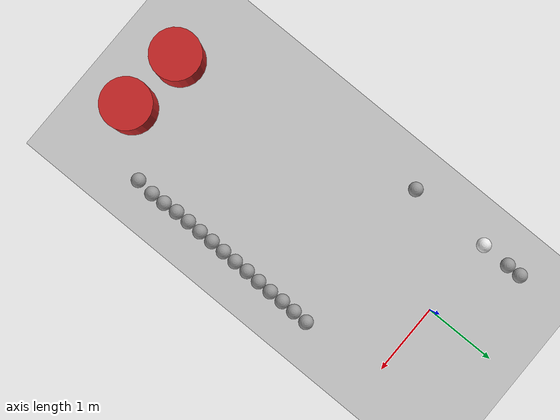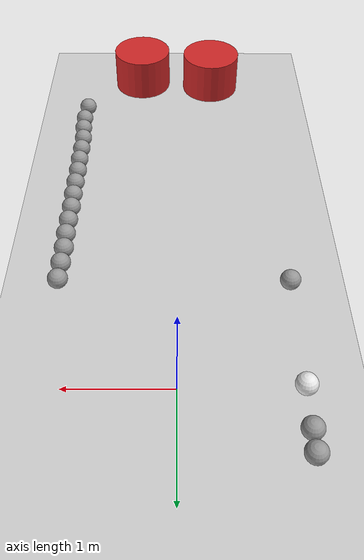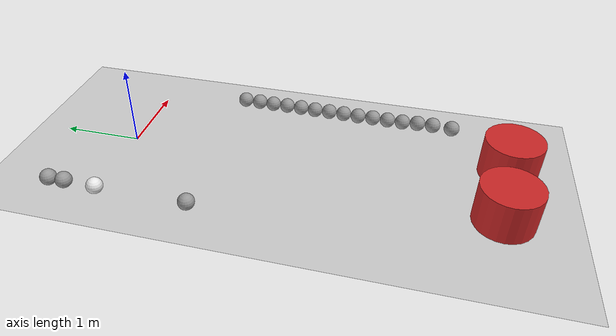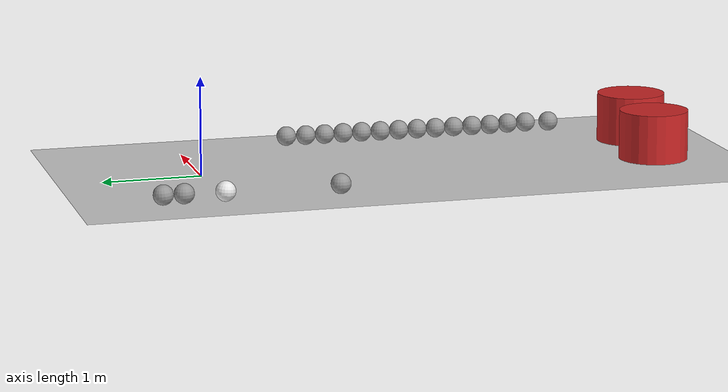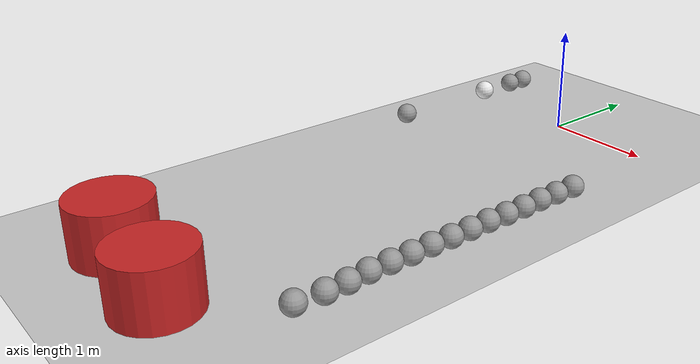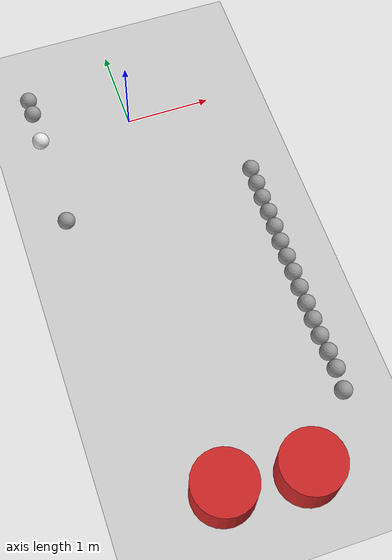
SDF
<sdf version="1.7">
 <world name="default">
  <model name="ground_plane">
   <static>1</static>
   <link name="link">
    <collision name="collision">
     <geometry><plane><normal>0 0 1</normal><size>100 100</size></plane></geometry>
     <surface>
      <contact><collide_bitmask>65535</collide_bitmask></contact>
      <friction><ode><mu>100</mu><mu2>50</mu2></ode></friction>
     </surface>
    </collision>
    <visual name="visual">
     <cast_shadows>0</cast_shadows>
     <geometry><plane><normal>0 0 1</normal><size>100 100</size></plane></geometry>
     <material>
      <script><uri>file://media/materials/scripts/gazebo.material</uri><name>Gazebo/Grey</name></script>
     </material>
    </visual>
   </link>
  </model>
  <model name="sphere">
   <link name="link_0">
    <inertial>
     <mass>1</mass>
     <inertia><ixx>0.1</ixx><ixy>0</ixy><ixz>0</ixz><iyy>0.1</iyy><iyz>0</iyz><izz>0.1</izz></inertia>
    </inertial>
    <visual name="visual">
     <geometry><sphere><radius>0.1</radius></sphere></geometry>
     <material>
      <lighting>1</lighting>
      <script><uri>file://media/materials/scripts/gazebo.material</uri><name>Gazebo/White</name></script>
      <shader type="pixel"><normal_map>__default__</normal_map></shader>
      <ambient>0.3 0.3 0.3 1</ambient>
      <diffuse>0.7 0.7 0.7 1</diffuse>
      <specular>0.01 0.01 0.01 1</specular>
      <emissive>0 0 0 1</emissive>
     </material>
    </visual>
    <collision name="collision">
     <geometry><sphere><radius>0.1</radius></sphere></geometry>
     <surface>
      <friction>
       <ode><mu>1</mu><mu2>1</mu2><fdir1>0 0 0</fdir1><slip1>0</slip1><slip2>0</slip2></ode>
       <torsional>
        <coefficient>1</coefficient>
        <patch_radius>0</patch_radius>
        <surface_radius>0</surface_radius>
        <use_patch_radius>1</use_patch_radius>
        <ode><slip>0</slip></ode>
       </torsional>
      </friction>
      <bounce><restitution_coefficient>0</restitution_coefficient><threshold>1e+06</threshold></bounce>
      <contact>
       <collide_without_contact>0</collide_without_contact>
       <collide_without_contact_bitmask>1</collide_without_contact_bitmask>
       <collide_bitmask>1</collide_bitmask>
       <ode>
        <soft_cfm>0</soft_cfm>
        <soft_erp>0.2</soft_erp>
        <kp>1e+13</kp>
        <kd>1</kd>
        <max_vel>0.01</max_vel>
        <min_depth>0</min_depth>
       </ode>
       <bullet>
        <split_impulse>1</split_impulse>
        <split_impulse_penetration_threshold>-0.01</split_impulse_penetration_threshold>
        <soft_cfm>0</soft_cfm>
        <soft_erp>0.2</soft_erp>
        <kp>1e+13</kp>
        <kd>1</kd>
       </bullet>
      </contact>
     </surface>
    </collision>
   </link>
   <static>0</static>
   <pose>-1.091 0.000207 0.1 0.097317 -0.000948 0.005574</pose>
  </model>
  <model name="sphere_1">
   <link name="link_0">
    <inertial>
     <mass>1</mass>
     <inertia><ixx>0.1</ixx><ixy>0</ixy><ixz>0</ixz><iyy>0.1</iyy><iyz>0</iyz><izz>0.1</izz></inertia>
    </inertial>
    <visual name="visual">
     <geometry><sphere><radius>0.1</radius></sphere></geometry>
     <material>
      <lighting>1</lighting>
      <script><uri>file://media/materials/scripts/gazebo.material</uri><name>Gazebo/Grey</name></script>
      <shader type="pixel"><normal_map>__default__</normal_map></shader>
      <ambient>0.3 0.3 0.3 1</ambient>
      <diffuse>0.7 0.7 0.7 1</diffuse>
      <specular>0.01 0.01 0.01 1</specular>
      <emissive>0 0 0 1</emissive>
     </material>
    </visual>
    <collision name="collision">
     <geometry><sphere><radius>0.1</radius></sphere></geometry>
     <surface>
      <friction>
       <ode><mu>1</mu><mu2>1</mu2><fdir1>0 0 0</fdir1><slip1>0</slip1><slip2>0</slip2></ode>
       <torsional>
        <coefficient>1</coefficient>
        <patch_radius>0</patch_radius>
        <surface_radius>0</surface_radius>
        <use_patch_radius>1</use_patch_radius>
        <ode><slip>0</slip></ode>
       </torsional>
      </friction>
      <bounce><restitution_coefficient>0</restitution_coefficient><threshold>1e+06</threshold></bounce>
      <contact>
       <collide_without_contact>0</collide_without_contact>
       <collide_without_contact_bitmask>1</collide_without_contact_bitmask>
       <collide_bitmask>1</collide_bitmask>
       <ode>
        <soft_cfm>0</soft_cfm>
        <soft_erp>0.2</soft_erp>
        <kp>1e+13</kp>
        <kd>1</kd>
        <max_vel>0.01</max_vel>
        <min_depth>0</min_depth>
       </ode>
       <bullet>
        <split_impulse>1</split_impulse>
        <split_impulse_penetration_threshold>-0.01</split_impulse_penetration_threshold>
        <soft_cfm>0</soft_cfm>
        <soft_erp>0.2</soft_erp>
        <kp>1e+13</kp>
        <kd>1</kd>
       </bullet>
      </contact>
     </surface>
    </collision>
   </link>
   <static>0</static>
   <pose>-1.08492 0.403884 0.1 -0.010826 0.002979 -0.008224</pose>
  </model>
  <model name="sphere_2">
   <link name="link_0">
    <inertial>
     <mass>1</mass>
     <inertia><ixx>0.1</ixx><ixy>0</ixy><ixz>0</ixz><iyy>0.1</iyy><iyz>0</iyz><izz>0.1</izz></inertia>
    </inertial>
    <visual name="visual">
     <geometry><sphere><radius>0.1</radius></sphere></geometry>
     <material>
      <lighting>1</lighting>
      <script><uri>file://media/materials/scripts/gazebo.material</uri><name>Gazebo/Grey</name></script>
      <shader type="pixel"><normal_map>__default__</normal_map></shader>
      <ambient>0.3 0.3 0.3 1</ambient>
      <diffuse>0.7 0.7 0.7 1</diffuse>
      <specular>0.01 0.01 0.01 1</specular>
      <emissive>0 0 0 1</emissive>
     </material>
    </visual>
    <collision name="collision">
     <geometry><sphere><radius>0.1</radius></sphere></geometry>
     <surface>
      <friction>
       <ode><mu>1</mu><mu2>1</mu2><fdir1>0 0 0</fdir1><slip1>0</slip1><slip2>0</slip2></ode>
       <torsional>
        <coefficient>1</coefficient>
        <patch_radius>0</patch_radius>
        <surface_radius>0</surface_radius>
        <use_patch_radius>1</use_patch_radius>
        <ode><slip>0</slip></ode>
       </torsional>
      </friction>
      <bounce><restitution_coefficient>0</restitution_coefficient><threshold>1e+06</threshold></bounce>
      <contact>
       <collide_without_contact>0</collide_without_contact>
       <collide_without_contact_bitmask>1</collide_without_contact_bitmask>
       <collide_bitmask>1</collide_bitmask>
       <ode>
        <soft_cfm>0</soft_cfm>
        <soft_erp>0.2</soft_erp>
        <kp>1e+13</kp>
        <kd>1</kd>
        <max_vel>0.01</max_vel>
        <min_depth>0</min_depth>
       </ode>
       <bullet>
        <split_impulse>1</split_impulse>
        <split_impulse_penetration_threshold>-0.01</split_impulse_penetration_threshold>
        <soft_cfm>0</soft_cfm>
        <soft_erp>0.2</soft_erp>
        <kp>1e+13</kp>
        <kd>1</kd>
       </bullet>
      </contact>
     </surface>
    </collision>
   </link>
   <static>0</static>
   <pose>-1.08295 0.60761 0.1 -0.067159 0.002545 0.001841</pose>
  </model>
  <model name="sphere_12">
   <link name="link_0">
    <inertial>
     <mass>1</mass>
     <inertia><ixx>0.1</ixx><ixy>0</ixy><ixz>0</ixz><iyy>0.1</iyy><iyz>0</iyz><izz>0.1</izz></inertia>
    </inertial>
    <visual name="visual">
     <geometry><sphere><radius>0.1</radius></sphere></geometry>
     <material>
      <lighting>1</lighting>
      <script><uri>file://media/materials/scripts/gazebo.material</uri><name>Gazebo/Grey</name></script>
      <shader type="pixel"><normal_map>__default__</normal_map></shader>
      <ambient>0.3 0.3 0.3 1</ambient>
      <diffuse>0.7 0.7 0.7 1</diffuse>
      <specular>0.01 0.01 0.01 1</specular>
      <emissive>0 0 0 1</emissive>
     </material>
    </visual>
    <collision name="collision">
     <geometry><sphere><radius>0.1</radius></sphere></geometry>
     <surface>
      <friction>
       <ode><mu>1</mu><mu2>1</mu2><fdir1>0 0 0</fdir1><slip1>0</slip1><slip2>0</slip2></ode>
       <torsional>
        <coefficient>1</coefficient>
        <patch_radius>0</patch_radius>
        <surface_radius>0</surface_radius>
        <use_patch_radius>1</use_patch_radius>
        <ode><slip>0</slip></ode>
       </torsional>
      </friction>
      <bounce><restitution_coefficient>0</restitution_coefficient><threshold>1e+06</threshold></bounce>
      <contact>
       <collide_without_contact>0</collide_without_contact>
       <collide_without_contact_bitmask>1</collide_without_contact_bitmask>
       <collide_bitmask>1</collide_bitmask>
       <ode>
        <soft_cfm>0</soft_cfm>
        <soft_erp>0.2</soft_erp>
        <kp>1e+13</kp>
        <kd>1</kd>
        <max_vel>0.01</max_vel>
        <min_depth>0</min_depth>
       </ode>
       <bullet>
        <split_impulse>1</split_impulse>
        <split_impulse_penetration_threshold>-0.01</split_impulse_penetration_threshold>
        <soft_cfm>0</soft_cfm>
        <soft_erp>0.2</soft_erp>
        <kp>1e+13</kp>
        <kd>1</kd>
       </bullet>
      </contact>
     </surface>
    </collision>
   </link>
   <static>0</static>
   <pose>-1.09033 -1.14062 0.1 0 -0 0</pose>
  </model>
  <model name="sphere_38">
   <link name="link_0">
    <inertial>
     <mass>1</mass>
     <inertia><ixx>0.1</ixx><ixy>0</ixy><ixz>0</ixz><iyy>0.1</iyy><iyz>0</iyz><izz>0.1</izz></inertia>
    </inertial>
    <visual name="visual">
     <geometry><sphere><radius>0.1</radius></sphere></geometry>
     <material>
      <lighting>1</lighting>
      <script><uri>file://media/materials/scripts/gazebo.material</uri><name>Gazebo/Grey</name></script>
      <shader type="pixel"><normal_map>__default__</normal_map></shader>
      <ambient>0.3 0.3 0.3 1</ambient>
      <diffuse>0.7 0.7 0.7 1</diffuse>
      <specular>0.01 0.01 0.01 1</specular>
      <emissive>0 0 0 1</emissive>
     </material>
    </visual>
    <collision name="collision">
     <geometry><sphere><radius>0.1</radius></sphere></geometry>
     <surface>
      <friction>
       <ode><mu>1</mu><mu2>1</mu2><fdir1>0 0 0</fdir1><slip1>0</slip1><slip2>0</slip2></ode>
       <torsional>
        <coefficient>1</coefficient>
        <patch_radius>0</patch_radius>
        <surface_radius>0</surface_radius>
        <use_patch_radius>1</use_patch_radius>
        <ode><slip>0</slip></ode>
       </torsional>
      </friction>
      <bounce><restitution_coefficient>0</restitution_coefficient><threshold>1e+06</threshold></bounce>
      <contact>
       <collide_without_contact>0</collide_without_contact>
       <collide_without_contact_bitmask>1</collide_without_contact_bitmask>
       <collide_bitmask>1</collide_bitmask>
       <ode>
        <soft_cfm>0</soft_cfm>
        <soft_erp>0.2</soft_erp>
        <kp>1e+13</kp>
        <kd>1</kd>
        <max_vel>0.01</max_vel>
        <min_depth>0</min_depth>
       </ode>
       <bullet>
        <split_impulse>1</split_impulse>
        <split_impulse_penetration_threshold>-0.01</split_impulse_penetration_threshold>
        <soft_cfm>0</soft_cfm>
        <soft_erp>0.2</soft_erp>
        <kp>1e+13</kp>
        <kd>1</kd>
       </bullet>
      </contact>
     </surface>
    </collision>
   </link>
   <static>0</static>
   <pose>1.1388 -3.75583 0.1 -0.00572 0.049658 -0.007044</pose>
  </model>
  <model name="sphere_39">
   <link name="link_0">
    <inertial>
     <mass>1</mass>
     <inertia><ixx>0.1</ixx><ixy>0</ixy><ixz>0</ixz><iyy>0.1</iyy><iyz>0</iyz><izz>0.1</izz></inertia>
    </inertial>
    <visual name="visual">
     <geometry><sphere><radius>0.1</radius></sphere></geometry>
     <material>
      <lighting>1</lighting>
      <script><uri>file://media/materials/scripts/gazebo.material</uri><name>Gazebo/Grey</name></script>
      <shader type="pixel"><normal_map>__default__</normal_map></shader>
      <ambient>0.3 0.3 0.3 1</ambient>
      <diffuse>0.7 0.7 0.7 1</diffuse>
      <specular>0.01 0.01 0.01 1</specular>
      <emissive>0 0 0 1</emissive>
     </material>
    </visual>
    <collision name="collision">
     <geometry><sphere><radius>0.1</radius></sphere></geometry>
     <surface>
      <friction>
       <ode><mu>1</mu><mu2>1</mu2><fdir1>0 0 0</fdir1><slip1>0</slip1><slip2>0</slip2></ode>
       <torsional>
        <coefficient>1</coefficient>
        <patch_radius>0</patch_radius>
        <surface_radius>0</surface_radius>
        <use_patch_radius>1</use_patch_radius>
        <ode><slip>0</slip></ode>
       </torsional>
      </friction>
      <bounce><restitution_coefficient>0</restitution_coefficient><threshold>1e+06</threshold></bounce>
      <contact>
       <collide_without_contact>0</collide_without_contact>
       <collide_without_contact_bitmask>1</collide_without_contact_bitmask>
       <collide_bitmask>1</collide_bitmask>
       <ode>
        <soft_cfm>0</soft_cfm>
        <soft_erp>0.2</soft_erp>
        <kp>1e+13</kp>
        <kd>1</kd>
        <max_vel>0.01</max_vel>
        <min_depth>0</min_depth>
       </ode>
       <bullet>
        <split_impulse>1</split_impulse>
        <split_impulse_penetration_threshold>-0.01</split_impulse_penetration_threshold>
        <soft_cfm>0</soft_cfm>
        <soft_erp>0.2</soft_erp>
        <kp>1e+13</kp>
        <kd>1</kd>
       </bullet>
      </contact>
     </surface>
    </collision>
   </link>
   <static>0</static>
   <pose>1.13443 -3.55575 0.1 -0.101295 0.023621 0.037882</pose>
  </model>
  <model name="sphere_40">
   <link name="link_0">
    <inertial>
     <mass>1</mass>
     <inertia><ixx>0.1</ixx><ixy>0</ixy><ixz>0</ixz><iyy>0.1</iyy><iyz>0</iyz><izz>0.1</izz></inertia>
    </inertial>
    <visual name="visual">
     <geometry><sphere><radius>0.1</radius></sphere></geometry>
     <material>
      <lighting>1</lighting>
      <script><uri>file://media/materials/scripts/gazebo.material</uri><name>Gazebo/Grey</name></script>
      <shader type="pixel"><normal_map>__default__</normal_map></shader>
      <ambient>0.3 0.3 0.3 1</ambient>
      <diffuse>0.7 0.7 0.7 1</diffuse>
      <specular>0.01 0.01 0.01 1</specular>
      <emissive>0 0 0 1</emissive>
     </material>
    </visual>
    <collision name="collision">
     <geometry><sphere><radius>0.1</radius></sphere></geometry>
     <surface>
      <friction>
       <ode><mu>1</mu><mu2>1</mu2><fdir1>0 0 0</fdir1><slip1>0</slip1><slip2>0</slip2></ode>
       <torsional>
        <coefficient>1</coefficient>
        <patch_radius>0</patch_radius>
        <surface_radius>0</surface_radius>
        <use_patch_radius>1</use_patch_radius>
        <ode><slip>0</slip></ode>
       </torsional>
      </friction>
      <bounce><restitution_coefficient>0</restitution_coefficient><threshold>1e+06</threshold></bounce>
      <contact>
       <collide_without_contact>0</collide_without_contact>
       <collide_without_contact_bitmask>1</collide_without_contact_bitmask>
       <collide_bitmask>1</collide_bitmask>
       <ode>
        <soft_cfm>0</soft_cfm>
        <soft_erp>0.2</soft_erp>
        <kp>1e+13</kp>
        <kd>1</kd>
        <max_vel>0.01</max_vel>
        <min_depth>0</min_depth>
       </ode>
       <bullet>
        <split_impulse>1</split_impulse>
        <split_impulse_penetration_threshold>-0.01</split_impulse_penetration_threshold>
        <soft_cfm>0</soft_cfm>
        <soft_erp>0.2</soft_erp>
        <kp>1e+13</kp>
        <kd>1</kd>
       </bullet>
      </contact>
     </surface>
    </collision>
   </link>
   <static>0</static>
   <pose>1.11807 -3.35616 0.1 0.003481 -0.017971 0.006857</pose>
  </model>
  <model name="sphere_41">
   <link name="link_0">
    <inertial>
     <mass>1</mass>
     <inertia><ixx>0.1</ixx><ixy>0</ixy><ixz>0</ixz><iyy>0.1</iyy><iyz>0</iyz><izz>0.1</izz></inertia>
    </inertial>
    <visual name="visual">
     <geometry><sphere><radius>0.1</radius></sphere></geometry>
     <material>
      <lighting>1</lighting>
      <script><uri>file://media/materials/scripts/gazebo.material</uri><name>Gazebo/Grey</name></script>
      <shader type="pixel"><normal_map>__default__</normal_map></shader>
      <ambient>0.3 0.3 0.3 1</ambient>
      <diffuse>0.7 0.7 0.7 1</diffuse>
      <specular>0.01 0.01 0.01 1</specular>
      <emissive>0 0 0 1</emissive>
     </material>
    </visual>
    <collision name="collision">
     <geometry><sphere><radius>0.1</radius></sphere></geometry>
     <surface>
      <friction>
       <ode><mu>1</mu><mu2>1</mu2><fdir1>0 0 0</fdir1><slip1>0</slip1><slip2>0</slip2></ode>
       <torsional>
        <coefficient>1</coefficient>
        <patch_radius>0</patch_radius>
        <surface_radius>0</surface_radius>
        <use_patch_radius>1</use_patch_radius>
        <ode><slip>0</slip></ode>
       </torsional>
      </friction>
      <bounce><restitution_coefficient>0</restitution_coefficient><threshold>1e+06</threshold></bounce>
      <contact>
       <collide_without_contact>0</collide_without_contact>
       <collide_without_contact_bitmask>1</collide_without_contact_bitmask>
       <collide_bitmask>1</collide_bitmask>
       <ode>
        <soft_cfm>0</soft_cfm>
        <soft_erp>0.2</soft_erp>
        <kp>1e+13</kp>
        <kd>1</kd>
        <max_vel>0.01</max_vel>
        <min_depth>0</min_depth>
       </ode>
       <bullet>
        <split_impulse>1</split_impulse>
        <split_impulse_penetration_threshold>-0.01</split_impulse_penetration_threshold>
        <soft_cfm>0</soft_cfm>
        <soft_erp>0.2</soft_erp>
        <kp>1e+13</kp>
        <kd>1</kd>
       </bullet>
      </contact>
     </surface>
    </collision>
   </link>
   <static>0</static>
   <pose>1.11838 -3.15616 0.1 0.030994 -0.008865 -0.015568</pose>
  </model>
  <model name="sphere_42">
   <link name="link_0">
    <inertial>
     <mass>1</mass>
     <inertia><ixx>0.1</ixx><ixy>0</ixy><ixz>0</ixz><iyy>0.1</iyy><iyz>0</iyz><izz>0.1</izz></inertia>
    </inertial>
    <visual name="visual">
     <geometry><sphere><radius>0.1</radius></sphere></geometry>
     <material>
      <lighting>1</lighting>
      <script><uri>file://media/materials/scripts/gazebo.material</uri><name>Gazebo/Grey</name></script>
      <shader type="pixel"><normal_map>__default__</normal_map></shader>
      <ambient>0.3 0.3 0.3 1</ambient>
      <diffuse>0.7 0.7 0.7 1</diffuse>
      <specular>0.01 0.01 0.01 1</specular>
      <emissive>0 0 0 1</emissive>
     </material>
    </visual>
    <collision name="collision">
     <geometry><sphere><radius>0.1</radius></sphere></geometry>
     <surface>
      <friction>
       <ode><mu>1</mu><mu2>1</mu2><fdir1>0 0 0</fdir1><slip1>0</slip1><slip2>0</slip2></ode>
       <torsional>
        <coefficient>1</coefficient>
        <patch_radius>0</patch_radius>
        <surface_radius>0</surface_radius>
        <use_patch_radius>1</use_patch_radius>
        <ode><slip>0</slip></ode>
       </torsional>
      </friction>
      <bounce><restitution_coefficient>0</restitution_coefficient><threshold>1e+06</threshold></bounce>
      <contact>
       <collide_without_contact>0</collide_without_contact>
       <collide_without_contact_bitmask>1</collide_without_contact_bitmask>
       <collide_bitmask>1</collide_bitmask>
       <ode>
        <soft_cfm>0</soft_cfm>
        <soft_erp>0.2</soft_erp>
        <kp>1e+13</kp>
        <kd>1</kd>
        <max_vel>0.01</max_vel>
        <min_depth>0</min_depth>
       </ode>
       <bullet>
        <split_impulse>1</split_impulse>
        <split_impulse_penetration_threshold>-0.01</split_impulse_penetration_threshold>
        <soft_cfm>0</soft_cfm>
        <soft_erp>0.2</soft_erp>
        <kp>1e+13</kp>
        <kd>1</kd>
       </bullet>
      </contact>
     </surface>
    </collision>
   </link>
   <static>0</static>
   <pose>1.12229 -2.95617 0.1 0.014626 0.007557 0.001917</pose>
  </model>
  <model name="sphere_43">
   <link name="link_0">
    <inertial>
     <mass>1</mass>
     <inertia><ixx>0.1</ixx><ixy>0</ixy><ixz>0</ixz><iyy>0.1</iyy><iyz>0</iyz><izz>0.1</izz></inertia>
    </inertial>
    <visual name="visual">
     <geometry><sphere><radius>0.1</radius></sphere></geometry>
     <material>
      <lighting>1</lighting>
      <script><uri>file://media/materials/scripts/gazebo.material</uri><name>Gazebo/Grey</name></script>
      <shader type="pixel"><normal_map>__default__</normal_map></shader>
      <ambient>0.3 0.3 0.3 1</ambient>
      <diffuse>0.7 0.7 0.7 1</diffuse>
      <specular>0.01 0.01 0.01 1</specular>
      <emissive>0 0 0 1</emissive>
     </material>
    </visual>
    <collision name="collision">
     <geometry><sphere><radius>0.1</radius></sphere></geometry>
     <surface>
      <friction>
       <ode><mu>1</mu><mu2>1</mu2><fdir1>0 0 0</fdir1><slip1>0</slip1><slip2>0</slip2></ode>
       <torsional>
        <coefficient>1</coefficient>
        <patch_radius>0</patch_radius>
        <surface_radius>0</surface_radius>
        <use_patch_radius>1</use_patch_radius>
        <ode><slip>0</slip></ode>
       </torsional>
      </friction>
      <bounce><restitution_coefficient>0</restitution_coefficient><threshold>1e+06</threshold></bounce>
      <contact>
       <collide_without_contact>0</collide_without_contact>
       <collide_without_contact_bitmask>1</collide_without_contact_bitmask>
       <collide_bitmask>1</collide_bitmask>
       <ode>
        <soft_cfm>0</soft_cfm>
        <soft_erp>0.2</soft_erp>
        <kp>1e+13</kp>
        <kd>1</kd>
        <max_vel>0.01</max_vel>
        <min_depth>0</min_depth>
       </ode>
       <bullet>
        <split_impulse>1</split_impulse>
        <split_impulse_penetration_threshold>-0.01</split_impulse_penetration_threshold>
        <soft_cfm>0</soft_cfm>
        <soft_erp>0.2</soft_erp>
        <kp>1e+13</kp>
        <kd>1</kd>
       </bullet>
      </contact>
     </surface>
    </collision>
   </link>
   <static>0</static>
   <pose>1.12068 -2.75547 0.1 -0.046632 -0.00133 0.003104</pose>
  </model>
  <model name="sphere_44">
   <link name="link_0">
    <inertial>
     <mass>1</mass>
     <inertia><ixx>0.1</ixx><ixy>0</ixy><ixz>0</ixz><iyy>0.1</iyy><iyz>0</iyz><izz>0.1</izz></inertia>
    </inertial>
    <visual name="visual">
     <geometry><sphere><radius>0.1</radius></sphere></geometry>
     <material>
      <lighting>1</lighting>
      <script><uri>file://media/materials/scripts/gazebo.material</uri><name>Gazebo/Grey</name></script>
      <shader type="pixel"><normal_map>__default__</normal_map></shader>
      <ambient>0.3 0.3 0.3 1</ambient>
      <diffuse>0.7 0.7 0.7 1</diffuse>
      <specular>0.01 0.01 0.01 1</specular>
      <emissive>0 0 0 1</emissive>
     </material>
    </visual>
    <collision name="collision">
     <geometry><sphere><radius>0.1</radius></sphere></geometry>
     <surface>
      <friction>
       <ode><mu>1</mu><mu2>1</mu2><fdir1>0 0 0</fdir1><slip1>0</slip1><slip2>0</slip2></ode>
       <torsional>
        <coefficient>1</coefficient>
        <patch_radius>0</patch_radius>
        <surface_radius>0</surface_radius>
        <use_patch_radius>1</use_patch_radius>
        <ode><slip>0</slip></ode>
       </torsional>
      </friction>
      <bounce><restitution_coefficient>0</restitution_coefficient><threshold>1e+06</threshold></bounce>
      <contact>
       <collide_without_contact>0</collide_without_contact>
       <collide_without_contact_bitmask>1</collide_without_contact_bitmask>
       <collide_bitmask>1</collide_bitmask>
       <ode>
        <soft_cfm>0</soft_cfm>
        <soft_erp>0.2</soft_erp>
        <kp>1e+13</kp>
        <kd>1</kd>
        <max_vel>0.01</max_vel>
        <min_depth>0</min_depth>
       </ode>
       <bullet>
        <split_impulse>1</split_impulse>
        <split_impulse_penetration_threshold>-0.01</split_impulse_penetration_threshold>
        <soft_cfm>0</soft_cfm>
        <soft_erp>0.2</soft_erp>
        <kp>1e+13</kp>
        <kd>1</kd>
       </bullet>
      </contact>
     </surface>
    </collision>
   </link>
   <static>0</static>
   <pose>1.12622 -2.55555 0.1 0.054553 0.000909 -0.006408</pose>
  </model>
  <model name="sphere_45">
   <link name="link_0">
    <inertial>
     <mass>1</mass>
     <inertia><ixx>0.1</ixx><ixy>0</ixy><ixz>0</ixz><iyy>0.1</iyy><iyz>0</iyz><izz>0.1</izz></inertia>
    </inertial>
    <visual name="visual">
     <geometry><sphere><radius>0.1</radius></sphere></geometry>
     <material>
      <lighting>1</lighting>
      <script><uri>file://media/materials/scripts/gazebo.material</uri><name>Gazebo/Grey</name></script>
      <shader type="pixel"><normal_map>__default__</normal_map></shader>
      <ambient>0.3 0.3 0.3 1</ambient>
      <diffuse>0.7 0.7 0.7 1</diffuse>
      <specular>0.01 0.01 0.01 1</specular>
      <emissive>0 0 0 1</emissive>
     </material>
    </visual>
    <collision name="collision">
     <geometry><sphere><radius>0.1</radius></sphere></geometry>
     <surface>
      <friction>
       <ode><mu>1</mu><mu2>1</mu2><fdir1>0 0 0</fdir1><slip1>0</slip1><slip2>0</slip2></ode>
       <torsional>
        <coefficient>1</coefficient>
        <patch_radius>0</patch_radius>
        <surface_radius>0</surface_radius>
        <use_patch_radius>1</use_patch_radius>
        <ode><slip>0</slip></ode>
       </torsional>
      </friction>
      <bounce><restitution_coefficient>0</restitution_coefficient><threshold>1e+06</threshold></bounce>
      <contact>
       <collide_without_contact>0</collide_without_contact>
       <collide_without_contact_bitmask>1</collide_without_contact_bitmask>
       <collide_bitmask>1</collide_bitmask>
       <ode>
        <soft_cfm>0</soft_cfm>
        <soft_erp>0.2</soft_erp>
        <kp>1e+13</kp>
        <kd>1</kd>
        <max_vel>0.01</max_vel>
        <min_depth>0</min_depth>
       </ode>
       <bullet>
        <split_impulse>1</split_impulse>
        <split_impulse_penetration_threshold>-0.01</split_impulse_penetration_threshold>
        <soft_cfm>0</soft_cfm>
        <soft_erp>0.2</soft_erp>
        <kp>1e+13</kp>
        <kd>1</kd>
       </bullet>
      </contact>
     </surface>
    </collision>
   </link>
   <static>0</static>
   <pose>1.12867 -2.35556 0.1 -0.057829 0.002622 0.006321</pose>
  </model>
  <model name="sphere_46">
   <link name="link_0">
    <inertial>
     <mass>1</mass>
     <inertia><ixx>0.1</ixx><ixy>0</ixy><ixz>0</ixz><iyy>0.1</iyy><iyz>0</iyz><izz>0.1</izz></inertia>
    </inertial>
    <visual name="visual">
     <geometry><sphere><radius>0.1</radius></sphere></geometry>
     <material>
      <lighting>1</lighting>
      <script><uri>file://media/materials/scripts/gazebo.material</uri><name>Gazebo/Grey</name></script>
      <shader type="pixel"><normal_map>__default__</normal_map></shader>
      <ambient>0.3 0.3 0.3 1</ambient>
      <diffuse>0.7 0.7 0.7 1</diffuse>
      <specular>0.01 0.01 0.01 1</specular>
      <emissive>0 0 0 1</emissive>
     </material>
    </visual>
    <collision name="collision">
     <geometry><sphere><radius>0.1</radius></sphere></geometry>
     <surface>
      <friction>
       <ode><mu>1</mu><mu2>1</mu2><fdir1>0 0 0</fdir1><slip1>0</slip1><slip2>0</slip2></ode>
       <torsional>
        <coefficient>1</coefficient>
        <patch_radius>0</patch_radius>
        <surface_radius>0</surface_radius>
        <use_patch_radius>1</use_patch_radius>
        <ode><slip>0</slip></ode>
       </torsional>
      </friction>
      <bounce><restitution_coefficient>0</restitution_coefficient><threshold>1e+06</threshold></bounce>
      <contact>
       <collide_without_contact>0</collide_without_contact>
       <collide_without_contact_bitmask>1</collide_without_contact_bitmask>
       <collide_bitmask>1</collide_bitmask>
       <ode>
        <soft_cfm>0</soft_cfm>
        <soft_erp>0.2</soft_erp>
        <kp>1e+13</kp>
        <kd>1</kd>
        <max_vel>0.01</max_vel>
        <min_depth>0</min_depth>
       </ode>
       <bullet>
        <split_impulse>1</split_impulse>
        <split_impulse_penetration_threshold>-0.01</split_impulse_penetration_threshold>
        <soft_cfm>0</soft_cfm>
        <soft_erp>0.2</soft_erp>
        <kp>1e+13</kp>
        <kd>1</kd>
       </bullet>
      </contact>
     </surface>
    </collision>
   </link>
   <static>0</static>
   <pose>1.12737 -2.15557 0.1 -0.000369 -0.002959 -0.000921</pose>
  </model>
  <model name="sphere_47">
   <link name="link_0">
    <inertial>
     <mass>1</mass>
     <inertia><ixx>0.1</ixx><ixy>0</ixy><ixz>0</ixz><iyy>0.1</iyy><iyz>0</iyz><izz>0.1</izz></inertia>
    </inertial>
    <visual name="visual">
     <geometry><sphere><radius>0.1</radius></sphere></geometry>
     <material>
      <lighting>1</lighting>
      <script><uri>file://media/materials/scripts/gazebo.material</uri><name>Gazebo/Grey</name></script>
      <shader type="pixel"><normal_map>__default__</normal_map></shader>
      <ambient>0.3 0.3 0.3 1</ambient>
      <diffuse>0.7 0.7 0.7 1</diffuse>
      <specular>0.01 0.01 0.01 1</specular>
      <emissive>0 0 0 1</emissive>
     </material>
    </visual>
    <collision name="collision">
     <geometry><sphere><radius>0.1</radius></sphere></geometry>
     <surface>
      <friction>
       <ode><mu>1</mu><mu2>1</mu2><fdir1>0 0 0</fdir1><slip1>0</slip1><slip2>0</slip2></ode>
       <torsional>
        <coefficient>1</coefficient>
        <patch_radius>0</patch_radius>
        <surface_radius>0</surface_radius>
        <use_patch_radius>1</use_patch_radius>
        <ode><slip>0</slip></ode>
       </torsional>
      </friction>
      <bounce><restitution_coefficient>0</restitution_coefficient><threshold>1e+06</threshold></bounce>
      <contact>
       <collide_without_contact>0</collide_without_contact>
       <collide_without_contact_bitmask>1</collide_without_contact_bitmask>
       <collide_bitmask>1</collide_bitmask>
       <ode>
        <soft_cfm>0</soft_cfm>
        <soft_erp>0.2</soft_erp>
        <kp>1e+13</kp>
        <kd>1</kd>
        <max_vel>0.01</max_vel>
        <min_depth>0</min_depth>
       </ode>
       <bullet>
        <split_impulse>1</split_impulse>
        <split_impulse_penetration_threshold>-0.01</split_impulse_penetration_threshold>
        <soft_cfm>0</soft_cfm>
        <soft_erp>0.2</soft_erp>
        <kp>1e+13</kp>
        <kd>1</kd>
       </bullet>
      </contact>
     </surface>
    </collision>
   </link>
   <static>0</static>
   <pose>1.13583 -1.95571 0.1 0.043697 0.005322 -0.00818</pose>
  </model>
  <model name="sphere_48">
   <link name="link_0">
    <inertial>
     <mass>1</mass>
     <inertia><ixx>0.1</ixx><ixy>0</ixy><ixz>0</ixz><iyy>0.1</iyy><iyz>0</iyz><izz>0.1</izz></inertia>
    </inertial>
    <visual name="visual">
     <geometry><sphere><radius>0.1</radius></sphere></geometry>
     <material>
      <lighting>1</lighting>
      <script><uri>file://media/materials/scripts/gazebo.material</uri><name>Gazebo/Grey</name></script>
      <shader type="pixel"><normal_map>__default__</normal_map></shader>
      <ambient>0.3 0.3 0.3 1</ambient>
      <diffuse>0.7 0.7 0.7 1</diffuse>
      <specular>0.01 0.01 0.01 1</specular>
      <emissive>0 0 0 1</emissive>
     </material>
    </visual>
    <collision name="collision">
     <geometry><sphere><radius>0.1</radius></sphere></geometry>
     <surface>
      <friction>
       <ode><mu>1</mu><mu2>1</mu2><fdir1>0 0 0</fdir1><slip1>0</slip1><slip2>0</slip2></ode>
       <torsional>
        <coefficient>1</coefficient>
        <patch_radius>0</patch_radius>
        <surface_radius>0</surface_radius>
        <use_patch_radius>1</use_patch_radius>
        <ode><slip>0</slip></ode>
       </torsional>
      </friction>
      <bounce><restitution_coefficient>0</restitution_coefficient><threshold>1e+06</threshold></bounce>
      <contact>
       <collide_without_contact>0</collide_without_contact>
       <collide_without_contact_bitmask>1</collide_without_contact_bitmask>
       <collide_bitmask>1</collide_bitmask>
       <ode>
        <soft_cfm>0</soft_cfm>
        <soft_erp>0.2</soft_erp>
        <kp>1e+13</kp>
        <kd>1</kd>
        <max_vel>0.01</max_vel>
        <min_depth>0</min_depth>
       </ode>
       <bullet>
        <split_impulse>1</split_impulse>
        <split_impulse_penetration_threshold>-0.01</split_impulse_penetration_threshold>
        <soft_cfm>0</soft_cfm>
        <soft_erp>0.2</soft_erp>
        <kp>1e+13</kp>
        <kd>1</kd>
       </bullet>
      </contact>
     </surface>
    </collision>
   </link>
   <static>0</static>
   <pose>1.13834 -1.75572 0.1 -0.038988 0.007323 0.007662</pose>
  </model>
  <model name="sphere_49">
   <link name="link_0">
    <inertial>
     <mass>1</mass>
     <inertia><ixx>0.1</ixx><ixy>0</ixy><ixz>0</ixz><iyy>0.1</iyy><iyz>0</iyz><izz>0.1</izz></inertia>
    </inertial>
    <visual name="visual">
     <geometry><sphere><radius>0.1</radius></sphere></geometry>
     <material>
      <lighting>1</lighting>
      <script><uri>file://media/materials/scripts/gazebo.material</uri><name>Gazebo/Grey</name></script>
      <shader type="pixel"><normal_map>__default__</normal_map></shader>
      <ambient>0.3 0.3 0.3 1</ambient>
      <diffuse>0.7 0.7 0.7 1</diffuse>
      <specular>0.01 0.01 0.01 1</specular>
      <emissive>0 0 0 1</emissive>
     </material>
    </visual>
    <collision name="collision">
     <geometry><sphere><radius>0.1</radius></sphere></geometry>
     <surface>
      <friction>
       <ode><mu>1</mu><mu2>1</mu2><fdir1>0 0 0</fdir1><slip1>0</slip1><slip2>0</slip2></ode>
       <torsional>
        <coefficient>1</coefficient>
        <patch_radius>0</patch_radius>
        <surface_radius>0</surface_radius>
        <use_patch_radius>1</use_patch_radius>
        <ode><slip>0</slip></ode>
       </torsional>
      </friction>
      <bounce><restitution_coefficient>0</restitution_coefficient><threshold>1e+06</threshold></bounce>
      <contact>
       <collide_without_contact>0</collide_without_contact>
       <collide_without_contact_bitmask>1</collide_without_contact_bitmask>
       <collide_bitmask>1</collide_bitmask>
       <ode>
        <soft_cfm>0</soft_cfm>
        <soft_erp>0.2</soft_erp>
        <kp>1e+13</kp>
        <kd>1</kd>
        <max_vel>0.01</max_vel>
        <min_depth>0</min_depth>
       </ode>
       <bullet>
        <split_impulse>1</split_impulse>
        <split_impulse_penetration_threshold>-0.01</split_impulse_penetration_threshold>
        <soft_cfm>0</soft_cfm>
        <soft_erp>0.2</soft_erp>
        <kp>1e+13</kp>
        <kd>1</kd>
       </bullet>
      </contact>
     </surface>
    </collision>
   </link>
   <static>0</static>
   <pose>1.13568 -1.55573 0.1 0.012948 -0.004401 0.004765</pose>
  </model>
  <model name="sphere_50">
   <link name="link_0">
    <inertial>
     <mass>1</mass>
     <inertia><ixx>0.1</ixx><ixy>0</ixy><ixz>0</ixz><iyy>0.1</iyy><iyz>0</iyz><izz>0.1</izz></inertia>
    </inertial>
    <visual name="visual">
     <geometry><sphere><radius>0.1</radius></sphere></geometry>
     <material>
      <lighting>1</lighting>
      <script><uri>file://media/materials/scripts/gazebo.material</uri><name>Gazebo/Grey</name></script>
      <shader type="pixel"><normal_map>__default__</normal_map></shader>
      <ambient>0.3 0.3 0.3 1</ambient>
      <diffuse>0.7 0.7 0.7 1</diffuse>
      <specular>0.01 0.01 0.01 1</specular>
      <emissive>0 0 0 1</emissive>
     </material>
    </visual>
    <collision name="collision">
     <geometry><sphere><radius>0.1</radius></sphere></geometry>
     <surface>
      <friction>
       <ode><mu>1</mu><mu2>1</mu2><fdir1>0 0 0</fdir1><slip1>0</slip1><slip2>0</slip2></ode>
       <torsional>
        <coefficient>1</coefficient>
        <patch_radius>0</patch_radius>
        <surface_radius>0</surface_radius>
        <use_patch_radius>1</use_patch_radius>
        <ode><slip>0</slip></ode>
       </torsional>
      </friction>
      <bounce><restitution_coefficient>0</restitution_coefficient><threshold>1e+06</threshold></bounce>
      <contact>
       <collide_without_contact>0</collide_without_contact>
       <collide_without_contact_bitmask>1</collide_without_contact_bitmask>
       <collide_bitmask>1</collide_bitmask>
       <ode>
        <soft_cfm>0</soft_cfm>
        <soft_erp>0.2</soft_erp>
        <kp>1e+13</kp>
        <kd>1</kd>
        <max_vel>0.01</max_vel>
        <min_depth>0</min_depth>
       </ode>
       <bullet>
        <split_impulse>1</split_impulse>
        <split_impulse_penetration_threshold>-0.01</split_impulse_penetration_threshold>
        <soft_cfm>0</soft_cfm>
        <soft_erp>0.2</soft_erp>
        <kp>1e+13</kp>
        <kd>1</kd>
       </bullet>
      </contact>
     </surface>
    </collision>
   </link>
   <static>0</static>
   <pose>1.14221 -1.3558 0.1 0.010688 -0.014723 0.009749</pose>
  </model>
  <model name="sphere_51">
   <link name="link_0">
    <inertial>
     <mass>1</mass>
     <inertia><ixx>0.1</ixx><ixy>0</ixy><ixz>0</ixz><iyy>0.1</iyy><iyz>0</iyz><izz>0.1</izz></inertia>
    </inertial>
    <visual name="visual">
     <geometry><sphere><radius>0.1</radius></sphere></geometry>
     <material>
      <lighting>1</lighting>
      <script><uri>file://media/materials/scripts/gazebo.material</uri><name>Gazebo/Grey</name></script>
      <shader type="pixel"><normal_map>__default__</normal_map></shader>
      <ambient>0.3 0.3 0.3 1</ambient>
      <diffuse>0.7 0.7 0.7 1</diffuse>
      <specular>0.01 0.01 0.01 1</specular>
      <emissive>0 0 0 1</emissive>
     </material>
    </visual>
    <collision name="collision">
     <geometry><sphere><radius>0.1</radius></sphere></geometry>
     <surface>
      <friction>
       <ode><mu>1</mu><mu2>1</mu2><fdir1>0 0 0</fdir1><slip1>0</slip1><slip2>0</slip2></ode>
       <torsional>
        <coefficient>1</coefficient>
        <patch_radius>0</patch_radius>
        <surface_radius>0</surface_radius>
        <use_patch_radius>1</use_patch_radius>
        <ode><slip>0</slip></ode>
       </torsional>
      </friction>
      <bounce><restitution_coefficient>0</restitution_coefficient><threshold>1e+06</threshold></bounce>
      <contact>
       <collide_without_contact>0</collide_without_contact>
       <collide_without_contact_bitmask>1</collide_without_contact_bitmask>
       <collide_bitmask>1</collide_bitmask>
       <ode>
        <soft_cfm>0</soft_cfm>
        <soft_erp>0.2</soft_erp>
        <kp>1e+13</kp>
        <kd>1</kd>
        <max_vel>0.01</max_vel>
        <min_depth>0</min_depth>
       </ode>
       <bullet>
        <split_impulse>1</split_impulse>
        <split_impulse_penetration_threshold>-0.01</split_impulse_penetration_threshold>
        <soft_cfm>0</soft_cfm>
        <soft_erp>0.2</soft_erp>
        <kp>1e+13</kp>
        <kd>1</kd>
       </bullet>
      </contact>
     </surface>
    </collision>
   </link>
   <static>0</static>
   <pose>1.14735 -1.14886 0.1 -0.107007 -0.043415 -0.015377</pose>
  </model>
  <model name="sphere_37">
   <link name="link_0">
    <inertial>
     <mass>1</mass>
     <inertia><ixx>0.1</ixx><ixy>0</ixy><ixz>0</ixz><iyy>0.1</iyy><iyz>0</iyz><izz>0.1</izz></inertia>
    </inertial>
    <visual name="visual">
     <geometry><sphere><radius>0.1</radius></sphere></geometry>
     <material>
      <lighting>1</lighting>
      <script><uri>file://media/materials/scripts/gazebo.material</uri><name>Gazebo/Grey</name></script>
      <shader type="pixel"><normal_map>__default__</normal_map></shader>
      <ambient>0.3 0.3 0.3 1</ambient>
      <diffuse>0.7 0.7 0.7 1</diffuse>
      <specular>0.01 0.01 0.01 1</specular>
      <emissive>0 0 0 1</emissive>
     </material>
    </visual>
    <collision name="collision">
     <geometry><sphere><radius>0.1</radius></sphere></geometry>
     <surface>
      <friction>
       <ode><mu>1</mu><mu2>1</mu2><fdir1>0 0 0</fdir1><slip1>0</slip1><slip2>0</slip2></ode>
       <torsional>
        <coefficient>1</coefficient>
        <patch_radius>0</patch_radius>
        <surface_radius>0</surface_radius>
        <use_patch_radius>1</use_patch_radius>
        <ode><slip>0</slip></ode>
       </torsional>
      </friction>
      <bounce><restitution_coefficient>0</restitution_coefficient><threshold>1e+06</threshold></bounce>
      <contact>
       <collide_without_contact>0</collide_without_contact>
       <collide_without_contact_bitmask>1</collide_without_contact_bitmask>
       <collide_bitmask>1</collide_bitmask>
       <ode>
        <soft_cfm>0</soft_cfm>
        <soft_erp>0.2</soft_erp>
        <kp>1e+13</kp>
        <kd>1</kd>
        <max_vel>0.01</max_vel>
        <min_depth>0</min_depth>
       </ode>
       <bullet>
        <split_impulse>1</split_impulse>
        <split_impulse_penetration_threshold>-0.01</split_impulse_penetration_threshold>
        <soft_cfm>0</soft_cfm>
        <soft_erp>0.2</soft_erp>
        <kp>1e+13</kp>
        <kd>1</kd>
       </bullet>
      </contact>
     </surface>
    </collision>
   </link>
   <static>0</static>
   <pose>1.11833 -4.00266 0.1 0 -0 0</pose>
  </model>
  <model name="model8.1_0">
   <link name="link_1">
    <inertial>
     <mass>1</mass>
     <inertia><ixx>0.145833</ixx><ixy>0</ixy><ixz>0</ixz><iyy>0.145833</iyy><iyz>0</iyz><izz>0.125</izz></inertia>
    </inertial>
    <visual name="visual">
     <geometry><cylinder><radius>0.35</radius><length>0.5</length></cylinder></geometry>
     <material>
      <lighting>1</lighting>
      <script><uri>file://media/materials/scripts/gazebo.material</uri><name>Gazebo/Red</name></script>
      <shader type="pixel"><normal_map>__default__</normal_map></shader>
      <ambient>0.3 0.3 0.3 1</ambient>
      <diffuse>0.7 0.7 0.7 1</diffuse>
      <specular>0.01 0.01 0.01 1</specular>
      <emissive>0 0 0 1</emissive>
     </material>
    </visual>
    <collision name="collision">
     <geometry><cylinder><radius>0.35</radius><length>0.5</length></cylinder></geometry>
     <surface>
      <friction>
       <ode><mu>1</mu><mu2>1</mu2><fdir1>0 0 0</fdir1><slip1>0</slip1><slip2>0</slip2></ode>
       <torsional>
        <coefficient>1</coefficient>
        <patch_radius>0</patch_radius>
        <surface_radius>0</surface_radius>
        <use_patch_radius>1</use_patch_radius>
        <ode><slip>0</slip></ode>
       </torsional>
      </friction>
      <bounce><restitution_coefficient>0</restitution_coefficient><threshold>1e+06</threshold></bounce>
      <contact>
       <collide_without_contact>0</collide_without_contact>
       <collide_without_contact_bitmask>1</collide_without_contact_bitmask>
       <collide_bitmask>1</collide_bitmask>
       <ode>
        <soft_cfm>0</soft_cfm>
        <soft_erp>0.2</soft_erp>
        <kp>1e+13</kp>
        <kd>1</kd>
        <max_vel>0.01</max_vel>
        <min_depth>0</min_depth>
       </ode>
       <bullet>
        <split_impulse>1</split_impulse>
        <split_impulse_penetration_threshold>-0.01</split_impulse_penetration_threshold>
        <soft_cfm>0</soft_cfm>
        <soft_erp>0.2</soft_erp>
        <kp>1e+13</kp>
        <kd>1</kd>
       </bullet>
      </contact>
     </surface>
    </collision>
   </link>
   <static>0</static>
   <pose>-0.434569 -4.6053 0.249991 0 -0 0</pose>
  </model>
  <model name="model8.1_1">
   <link name="link_1">
    <inertial>
     <mass>1</mass>
     <inertia><ixx>0.145833</ixx><ixy>0</ixy><ixz>0</ixz><iyy>0.145833</iyy><iyz>0</iyz><izz>0.125</izz></inertia>
    </inertial>
    <visual name="visual">
     <geometry><cylinder><radius>0.35</radius><length>0.5</length></cylinder></geometry>
     <material>
      <lighting>1</lighting>
      <script><uri>file://media/materials/scripts/gazebo.material</uri><name>Gazebo/Red</name></script>
      <shader type="pixel"><normal_map>__default__</normal_map></shader>
      <ambient>0.3 0.3 0.3 1</ambient>
      <diffuse>0.7 0.7 0.7 1</diffuse>
      <specular>0.01 0.01 0.01 1</specular>
      <emissive>0 0 0 1</emissive>
     </material>
    </visual>
    <collision name="collision">
     <geometry><cylinder><radius>0.35</radius><length>0.5</length></cylinder></geometry>
     <surface>
      <friction>
       <ode><mu>1</mu><mu2>1</mu2><fdir1>0 0 0</fdir1><slip1>0</slip1><slip2>0</slip2></ode>
       <torsional>
        <coefficient>1</coefficient>
        <patch_radius>0</patch_radius>
        <surface_radius>0</surface_radius>
        <use_patch_radius>1</use_patch_radius>
        <ode><slip>0</slip></ode>
       </torsional>
      </friction>
      <bounce><restitution_coefficient>0</restitution_coefficient><threshold>1e+06</threshold></bounce>
      <contact>
       <collide_without_contact>0</collide_without_contact>
       <collide_without_contact_bitmask>1</collide_without_contact_bitmask>
       <collide_bitmask>1</collide_bitmask>
       <ode>
        <soft_cfm>0</soft_cfm>
        <soft_erp>0.2</soft_erp>
        <kp>1e+13</kp>
        <kd>1</kd>
        <max_vel>0.01</max_vel>
        <min_depth>0</min_depth>
       </ode>
       <bullet>
        <split_impulse>1</split_impulse>
        <split_impulse_penetration_threshold>-0.01</split_impulse_penetration_threshold>
        <soft_cfm>0</soft_cfm>
        <soft_erp>0.2</soft_erp>
        <kp>1e+13</kp>
        <kd>1</kd>
       </bullet>
      </contact>
     </surface>
    </collision>
   </link>
   <static>0</static>
   <pose>0.451512 -4.68568 0.249991 0 -0 0</pose>
  </model>
 </world>
</sdf>
